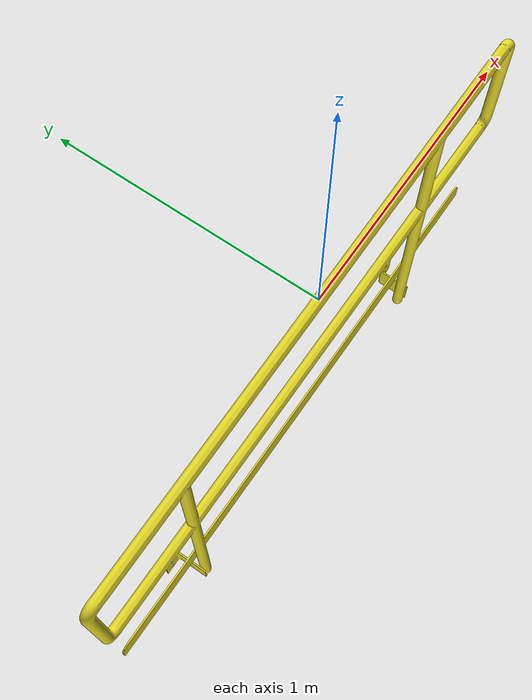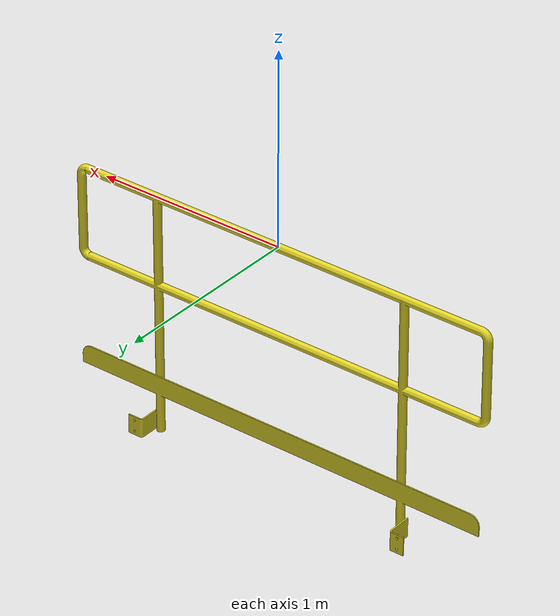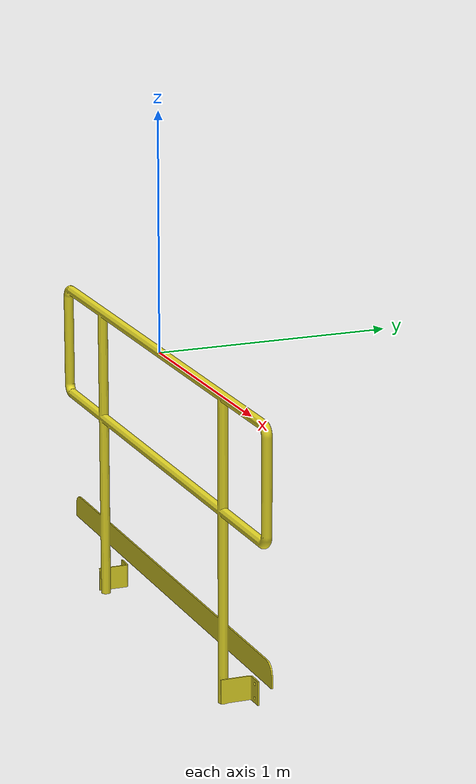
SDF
<?xml version='1.0'?>
<sdf version="1.7">
  <model name="baranda">
    <static>true</static>
    <link name="baranda_link">
      <collision name="baranda_collision">
        <geometry>
          <mesh>
            <uri>/home/brayan/catkin_ws/src/WorldMine/Barandas/baranda.stl</uri>
          </mesh>
        </geometry>
      </collision>
      <visual name="containers_visual">
        <geometry>
          <mesh>
            <uri>/home/brayan/catkin_ws/src/WorldMine/Barandas/baranda.stl</uri>
          </mesh>
         </geometry>
         <material>
          <script>
            <uri>file://media/materials/scripts/gazebo.material</uri>
            <name>Gazebo/Yellow</name>
          </script>
        </material>
       </visual>
    </link>
  </model>
</sdf>
